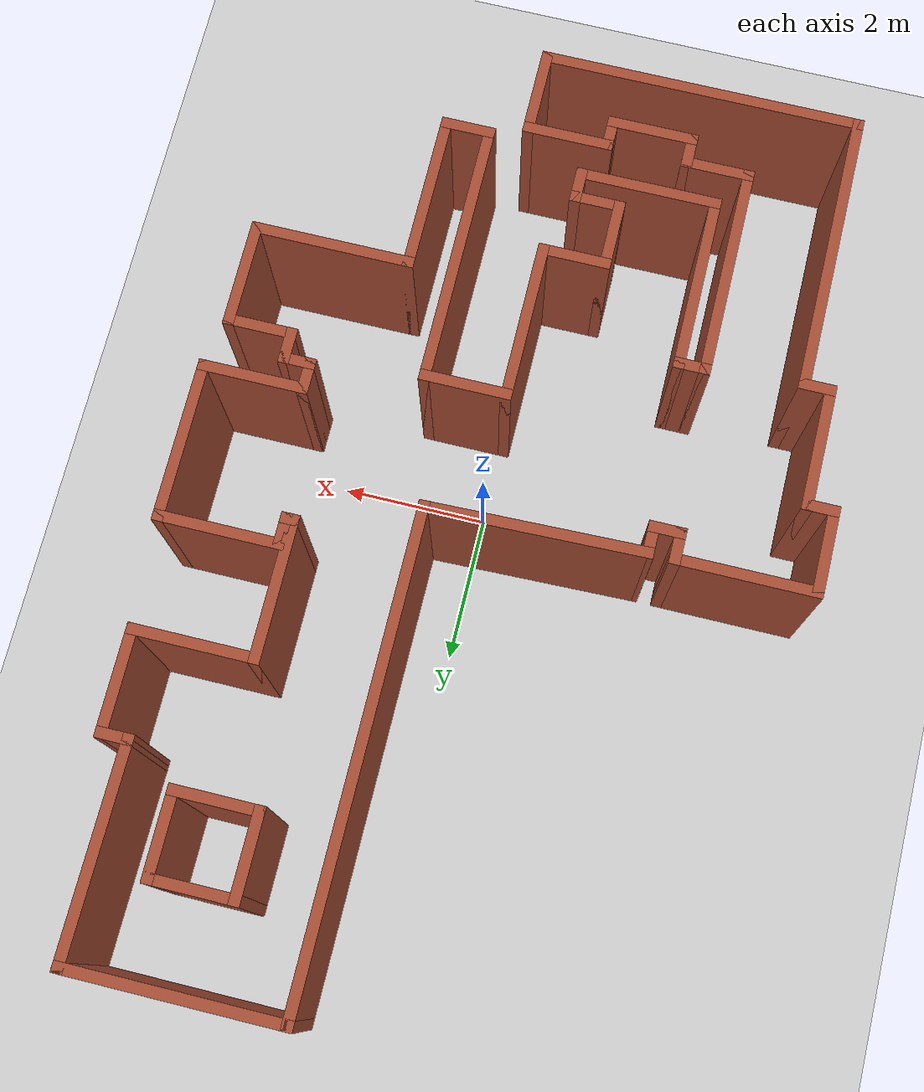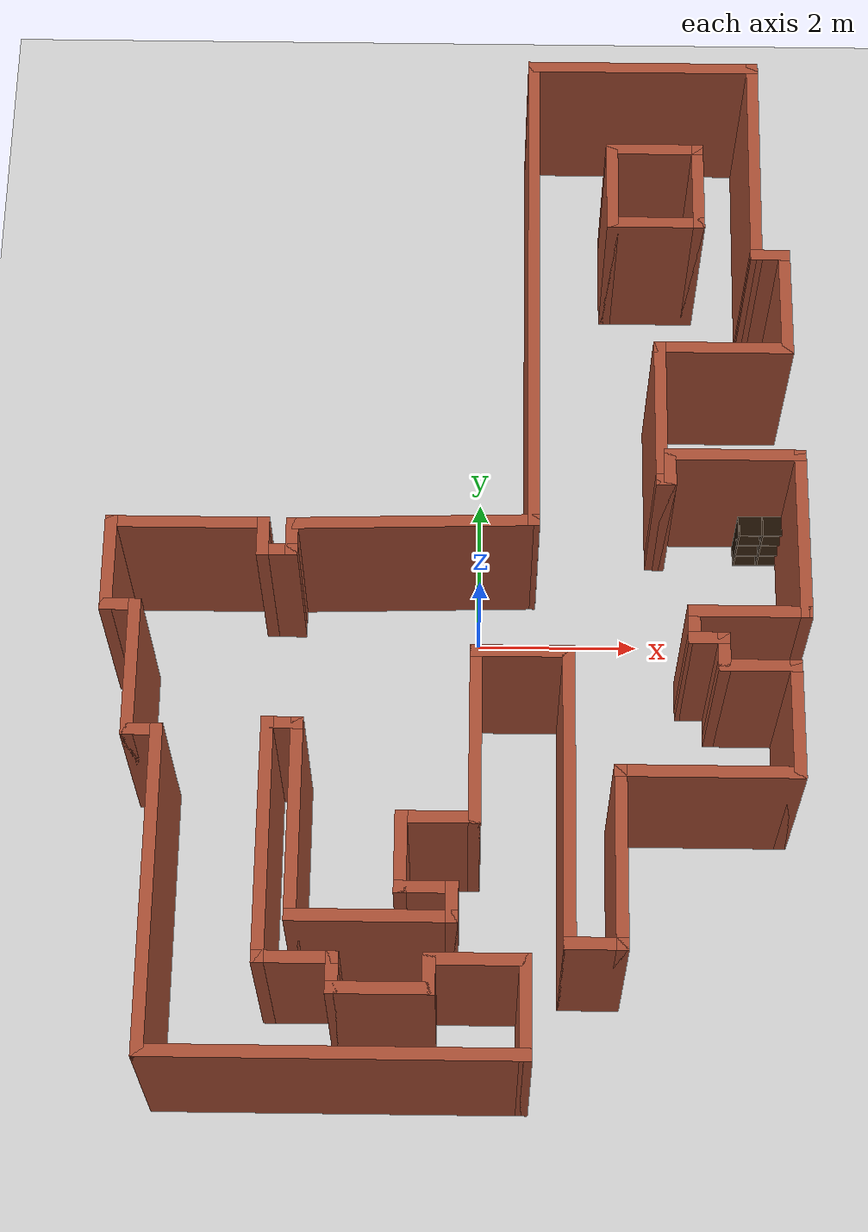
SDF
<sdf version="1.6">
 <world name="default">
  <light name="sun" type="directional">
   <pose>0 0 10 0 -0 0</pose>
   <diffuse>0.8 0.8 0.8 1</diffuse>
   <specular>0.2 0.2 0.2 1</specular>
   <attenuation>
    <range>1000</range>
    <constant>0.9</constant>
    <linear>0.01</linear>
    <quadratic>0.001</quadratic>
   </attenuation>
   <direction>-0.5 0.1 -0.9</direction>
  </light>
  <model name="ground_plane">
   <static>1</static>
   <link name="link">
    <collision name="collision">
     <geometry><plane><normal>0 0 1</normal><size>100 100</size></plane></geometry>
     <surface>
      <contact><collide_bitmask>65535</collide_bitmask></contact>
      <friction><ode><mu>100</mu><mu2>50</mu2></ode></friction>
     </surface>
    </collision>
    <visual name="visual">
     <cast_shadows>0</cast_shadows>
     <geometry><plane><normal>0 0 1</normal><size>100 100</size></plane></geometry>
     <material>
      <script><uri>file://media/materials/scripts/gazebo.material</uri><name>Gazebo/Grey</name></script>
     </material>
    </visual>
   </link>
  </model>
  <gravity>0 0 -9.8</gravity>
  <magnetic_field>6e-06 2.3e-05 -4.2e-05</magnetic_field>
  <atmosphere type="adiabatic"/>
  <physics name="default_physics" default="0" type="ode">
   <max_step_size>0.001</max_step_size>
   <real_time_factor>1</real_time_factor>
   <real_time_update_rate>1000</real_time_update_rate>
  </physics>
  <scene><ambient>0.4 0.4 0.4 1</ambient><background>0.7 0.7 0.7 1</background><shadows>1</shadows></scene>
  <audio><device>default</device></audio>
  <spherical_coordinates>
   <surface_model>EARTH_WGS84</surface_model>
   <latitude_deg>0</latitude_deg>
   <longitude_deg>0</longitude_deg>
   <elevation>0</elevation>
   <heading_deg>0</heading_deg>
  </spherical_coordinates>
  <model name="map_95">
   <pose>-0.288982 0.601975 0 0 -0 0</pose>
   <link name="Wall_0">
    <collision name="Wall_0_Collision">
     <geometry><box><size>3 0.15 2.5</size></box></geometry>
     <pose>0 0 1.25 0 -0 0</pose>
    </collision>
    <visual name="Wall_0_Visual">
     <pose>0 0 1.25 0 -0 0</pose>
     <geometry><box><size>3 0.15 2.5</size></box></geometry>
     <material>
      <script><uri>file://media/materials/scripts/gazebo.material</uri><name>Gazebo/Bricks</name></script>
      <ambient>1 1 1 1</ambient>
     </material>
     <meta><layer>0</layer></meta>
    </visual>
    <pose>2.35294 6.61348 0 0 -0 3.14159</pose>
   </link>
   <link name="Wall_1">
    <collision name="Wall_1_Collision">
     <geometry><box><size>6.75 0.15 2.5</size></box></geometry>
     <pose>0 0 1.25 0 -0 0</pose>
    </collision>
    <visual name="Wall_1_Visual">
     <pose>0 0 1.25 0 -0 0</pose>
     <geometry><box><size>6.75 0.15 2.5</size></box></geometry>
     <material>
      <script><uri>file://media/materials/scripts/gazebo.material</uri><name>Gazebo/Bricks</name></script>
      <ambient>1 1 1 1</ambient>
     </material>
     <meta><layer>0</layer></meta>
    </visual>
    <pose>0.927944 3.31348 0 0 -0 -1.5708</pose>
   </link>
   <link name="Wall_10">
    <collision name="Wall_10_Collision">
     <geometry><box><size>0.5 0.15 2.5</size></box></geometry>
     <pose>0 0 1.25 0 -0 0</pose>
    </collision>
    <visual name="Wall_10_Visual">
     <pose>0 0 1.25 0 -0 0</pose>
     <geometry><box><size>0.5 0.15 2.5</size></box></geometry>
     <material>
      <script><uri>file://media/materials/scripts/gazebo.material</uri><name>Gazebo/Bricks</name></script>
      <ambient>1 1 1 1</ambient>
     </material>
     <meta><layer>0</layer></meta>
    </visual>
    <pose>-4.025 -1.16422 0 0 -0 0</pose>
   </link>
   <link name="Wall_11">
    <collision name="Wall_11_Collision">
     <geometry><box><size>1.75 0.15 2.5</size></box></geometry>
     <pose>0 0 1.25 0 -0 0</pose>
    </collision>
    <visual name="Wall_11_Visual">
     <pose>0 0 1.25 0 -0 0</pose>
     <geometry><box><size>1.75 0.15 2.5</size></box></geometry>
     <material>
      <script><uri>file://media/materials/scripts/gazebo.material</uri><name>Gazebo/Bricks</name></script>
      <ambient>1 1 1 1</ambient>
     </material>
     <meta><layer>0</layer></meta>
    </visual>
    <pose>-3.85 -1.96422 0 0 -0 -1.5708</pose>
   </link>
   <link name="Wall_12">
    <collision name="Wall_12_Collision">
     <geometry><box><size>0.5 0.15 2.5</size></box></geometry>
     <pose>0 0 1.25 0 -0 0</pose>
    </collision>
    <visual name="Wall_12_Visual">
     <pose>0 0 1.25 0 -0 0</pose>
     <geometry><box><size>0.5 0.15 2.5</size></box></geometry>
     <material>
      <script><uri>file://media/materials/scripts/gazebo.material</uri><name>Gazebo/Bricks</name></script>
      <ambient>1 1 1 1</ambient>
     </material>
     <meta><layer>0</layer></meta>
    </visual>
    <pose>-3.675 -2.76422 0 0 -0 0</pose>
   </link>
   <link name="Wall_13">
    <collision name="Wall_13_Collision">
     <geometry><box><size>4 0.15 2.5</size></box></geometry>
     <pose>0 0 1.25 0 -0 0</pose>
    </collision>
    <visual name="Wall_13_Visual">
     <pose>0 0 1.25 0 -0 0</pose>
     <geometry><box><size>4 0.15 2.5</size></box></geometry>
     <material>
      <script><uri>file://media/materials/scripts/gazebo.material</uri><name>Gazebo/Bricks</name></script>
      <ambient>1 1 1 1</ambient>
     </material>
     <meta><layer>0</layer></meta>
    </visual>
    <pose>-3.5 -4.68922 0 0 -0 -1.5708</pose>
   </link>
   <link name="Wall_14">
    <collision name="Wall_14_Collision">
     <geometry><box><size>4.5 0.15 2.5</size></box></geometry>
     <pose>0 0 1.25 0 -0 0</pose>
    </collision>
    <visual name="Wall_14_Visual">
     <pose>0 0 1.25 0 -0 0</pose>
     <geometry><box><size>4.5 0.15 2.5</size></box></geometry>
     <material>
      <script><uri>file://media/materials/scripts/gazebo.material</uri><name>Gazebo/Bricks</name></script>
      <ambient>1 1 1 1</ambient>
     </material>
     <meta><layer>0</layer></meta>
    </visual>
    <pose>-1.325 -6.61422 0 0 -0 0</pose>
   </link>
   <link name="Wall_15">
    <collision name="Wall_15_Collision">
     <geometry><box><size>1.25 0.15 2.5</size></box></geometry>
     <pose>0 0 1.25 0 -0 0</pose>
    </collision>
    <visual name="Wall_15_Visual">
     <pose>0 0 1.25 0 -0 0</pose>
     <geometry><box><size>1.25 0.15 2.5</size></box></geometry>
     <material>
      <script><uri>file://media/materials/scripts/gazebo.material</uri><name>Gazebo/Bricks</name></script>
      <ambient>1 1 1 1</ambient>
     </material>
     <meta><layer>0</layer></meta>
    </visual>
    <pose>0.85 -6.06422 0 0 -0 1.5708</pose>
   </link>
   <link name="Wall_16">
    <collision name="Wall_16_Collision">
     <geometry><box><size>1.25 0.15 2.5</size></box></geometry>
     <pose>0 0 1.25 0 -0 0</pose>
    </collision>
    <visual name="Wall_16_Visual">
     <pose>0 0 1.25 0 -0 0</pose>
     <geometry><box><size>1.25 0.15 2.5</size></box></geometry>
     <material>
      <script><uri>file://media/materials/scripts/gazebo.material</uri><name>Gazebo/Bricks</name></script>
      <ambient>1 1 1 1</ambient>
     </material>
     <meta><layer>0</layer></meta>
    </visual>
    <pose>0.3 -5.51422 0 0 -0 3.14159</pose>
   </link>
   <link name="Wall_17">
    <collision name="Wall_17_Collision">
     <geometry><box><size>0.5 0.15 2.5</size></box></geometry>
     <pose>0 0 1.25 0 -0 0</pose>
    </collision>
    <visual name="Wall_17_Visual">
     <pose>0 0 1.25 0 -0 0</pose>
     <geometry><box><size>0.5 0.15 2.5</size></box></geometry>
     <material>
      <script><uri>file://media/materials/scripts/gazebo.material</uri><name>Gazebo/Bricks</name></script>
      <ambient>1 1 1 1</ambient>
     </material>
     <meta><layer>0</layer></meta>
    </visual>
    <pose>-0.25 -5.68922 0 0 -0 -1.5708</pose>
   </link>
   <link name="Wall_18">
    <collision name="Wall_18_Collision">
     <geometry><box><size>1.25 0.15 2.5</size></box></geometry>
     <pose>0 0 1.25 0 -0 0</pose>
    </collision>
    <visual name="Wall_18_Visual">
     <pose>0 0 1.25 0 -0 0</pose>
     <geometry><box><size>1.25 0.15 2.5</size></box></geometry>
     <material>
      <script><uri>file://media/materials/scripts/gazebo.material</uri><name>Gazebo/Bricks</name></script>
      <ambient>1 1 1 1</ambient>
     </material>
     <meta><layer>0</layer></meta>
    </visual>
    <pose>-0.8 -5.86422 0 0 -0 3.14159</pose>
   </link>
   <link name="Wall_19">
    <collision name="Wall_19_Collision">
     <geometry><box><size>0.5 0.15 2.5</size></box></geometry>
     <pose>0 0 1.25 0 -0 0</pose>
    </collision>
    <visual name="Wall_19_Visual">
     <pose>0 0 1.25 0 -0 0</pose>
     <geometry><box><size>0.5 0.15 2.5</size></box></geometry>
     <material>
      <script><uri>file://media/materials/scripts/gazebo.material</uri><name>Gazebo/Bricks</name></script>
      <ambient>1 1 1 1</ambient>
     </material>
     <meta><layer>0</layer></meta>
    </visual>
    <pose>-1.35 -5.68922 0 0 -0 1.5708</pose>
   </link>
   <link name="Wall_20">
    <collision name="Wall_20_Collision">
     <geometry><box><size>1 0.15 2.5</size></box></geometry>
     <pose>0 0 1.25 0 -0 0</pose>
    </collision>
    <visual name="Wall_20_Visual">
     <pose>0 0 1.25 0 -0 0</pose>
     <geometry><box><size>1 0.15 2.5</size></box></geometry>
     <material>
      <script><uri>file://media/materials/scripts/gazebo.material</uri><name>Gazebo/Bricks</name></script>
      <ambient>1 1 1 1</ambient>
     </material>
     <meta><layer>0</layer></meta>
    </visual>
    <pose>-1.775 -5.51422 0 0 -0 3.14159</pose>
   </link>
   <link name="Wall_21">
    <collision name="Wall_21_Collision">
     <geometry><box><size>3 0.15 2.5</size></box></geometry>
     <pose>0 0 1.25 0 -0 0</pose>
    </collision>
    <visual name="Wall_21_Visual">
     <pose>0 0 1.25 0 -0 0</pose>
     <geometry><box><size>3 0.15 2.5</size></box></geometry>
     <material>
      <script><uri>file://media/materials/scripts/gazebo.material</uri><name>Gazebo/Bricks</name></script>
      <ambient>1 1 1 1</ambient>
     </material>
     <meta><layer>0</layer></meta>
    </visual>
    <pose>-2.2 -4.08922 0 0 -0 1.5708</pose>
   </link>
   <link name="Wall_22">
    <collision name="Wall_22_Collision">
     <geometry><box><size>0.5 0.15 2.5</size></box></geometry>
     <pose>0 0 1.25 0 -0 0</pose>
    </collision>
    <visual name="Wall_22_Visual">
     <pose>0 0 1.25 0 -0 0</pose>
     <geometry><box><size>0.5 0.15 2.5</size></box></geometry>
     <material>
      <script><uri>file://media/materials/scripts/gazebo.material</uri><name>Gazebo/Bricks</name></script>
      <ambient>1 1 1 1</ambient>
     </material>
     <meta><layer>0</layer></meta>
    </visual>
    <pose>-2.025 -2.66422 0 0 -0 0</pose>
   </link>
   <link name="Wall_23">
    <collision name="Wall_23_Collision">
     <geometry><box><size>2.5 0.15 2.5</size></box></geometry>
     <pose>0 0 1.25 0 -0 0</pose>
    </collision>
    <visual name="Wall_23_Visual">
     <pose>0 0 1.25 0 -0 0</pose>
     <geometry><box><size>2.5 0.15 2.5</size></box></geometry>
     <material>
      <script><uri>file://media/materials/scripts/gazebo.material</uri><name>Gazebo/Bricks</name></script>
      <ambient>1 1 1 1</ambient>
     </material>
     <meta><layer>0</layer></meta>
    </visual>
    <pose>-1.85 -3.83922 0 0 -0 -1.5708</pose>
   </link>
   <link name="Wall_24">
    <collision name="Wall_24_Collision">
     <geometry><box><size>2 0.15 2.5</size></box></geometry>
     <pose>0 0 1.25 0 -0 0</pose>
    </collision>
    <visual name="Wall_24_Visual">
     <pose>0 0 1.25 0 -0 0</pose>
     <geometry><box><size>2 0.15 2.5</size></box></geometry>
     <material>
      <script><uri>file://media/materials/scripts/gazebo.material</uri><name>Gazebo/Bricks</name></script>
      <ambient>1 1 1 1</ambient>
     </material>
     <meta><layer>0</layer></meta>
    </visual>
    <pose>-0.925 -5.01422 0 0 -0 0</pose>
   </link>
   <link name="Wall_25">
    <collision name="Wall_25_Collision">
     <geometry><box><size>0.5 0.15 2.5</size></box></geometry>
     <pose>0 0 1.25 0 -0 0</pose>
    </collision>
    <visual name="Wall_25_Visual">
     <pose>0 0 1.25 0 -0 0</pose>
     <geometry><box><size>0.5 0.15 2.5</size></box></geometry>
     <material>
      <script><uri>file://media/materials/scripts/gazebo.material</uri><name>Gazebo/Bricks</name></script>
      <ambient>1 1 1 1</ambient>
     </material>
     <meta><layer>0</layer></meta>
    </visual>
    <pose>-0 -4.83922 0 0 -0 1.5708</pose>
   </link>
   <link name="Wall_26">
    <collision name="Wall_26_Collision">
     <geometry><box><size>0.75 0.15 2.5</size></box></geometry>
     <pose>0 0 1.25 0 -0 0</pose>
    </collision>
    <visual name="Wall_26_Visual">
     <pose>0 0 1.25 0 -0 0</pose>
     <geometry><box><size>0.75 0.15 2.5</size></box></geometry>
     <material>
      <script><uri>file://media/materials/scripts/gazebo.material</uri><name>Gazebo/Bricks</name></script>
      <ambient>1 1 1 1</ambient>
     </material>
     <meta><layer>0</layer></meta>
    </visual>
    <pose>-0.3 -4.66422 0 0 -0 3.14159</pose>
   </link>
   <link name="Wall_27">
    <collision name="Wall_27_Collision">
     <geometry><box><size>1 0.15 2.5</size></box></geometry>
     <pose>0 0 1.25 0 -0 0</pose>
    </collision>
    <visual name="Wall_27_Visual">
     <pose>0 0 1.25 0 -0 0</pose>
     <geometry><box><size>1 0.15 2.5</size></box></geometry>
     <material>
      <script><uri>file://media/materials/scripts/gazebo.material</uri><name>Gazebo/Bricks</name></script>
      <ambient>1 1 1 1</ambient>
     </material>
     <meta><layer>0</layer></meta>
    </visual>
    <pose>-0.6 -4.23922 0 0 -0 1.5708</pose>
   </link>
   <link name="Wall_28">
    <collision name="Wall_28_Collision">
     <geometry><box><size>1 0.15 2.5</size></box></geometry>
     <pose>0 0 1.25 0 -0 0</pose>
    </collision>
    <visual name="Wall_28_Visual">
     <pose>0 0 1.25 0 -0 0</pose>
     <geometry><box><size>1 0.15 2.5</size></box></geometry>
     <material>
      <script><uri>file://media/materials/scripts/gazebo.material</uri><name>Gazebo/Bricks</name></script>
      <ambient>1 1 1 1</ambient>
     </material>
     <meta><layer>0</layer></meta>
    </visual>
    <pose>-0.175 -3.81422 0 0 -0 0</pose>
   </link>
   <link name="Wall_30">
    <collision name="Wall_30_Collision">
     <geometry><box><size>3.07897 0.15 2.5</size></box></geometry>
     <pose>0 0 1.25 0 -0 0</pose>
    </collision>
    <visual name="Wall_30_Visual">
     <pose>0 0 1.25 0 -0 0</pose>
     <geometry><box><size>3.07897 0.15 2.5</size></box></geometry>
     <material>
      <script><uri>file://media/materials/scripts/gazebo.material</uri><name>Gazebo/Bricks</name></script>
      <ambient>1 1 1 1</ambient>
     </material>
     <meta><layer>0</layer></meta>
    </visual>
    <pose>-0.536028 -0.025369 0 0 -0 0.026533</pose>
   </link>
   <link name="Wall_35">
    <collision name="Wall_35_Collision">
     <geometry><box><size>0.75 0.15 2.5</size></box></geometry>
     <pose>0 0 1.25 0 -0 0</pose>
    </collision>
    <visual name="Wall_35_Visual">
     <pose>0 0 1.25 0 -0 0</pose>
     <geometry><box><size>0.75 0.15 2.5</size></box></geometry>
     <material>
      <script><uri>file://media/materials/scripts/gazebo.material</uri><name>Gazebo/Bricks</name></script>
      <ambient>1 1 1 1</ambient>
     </material>
     <meta><layer>0</layer></meta>
    </visual>
    <pose>1.65 -5.31422 0 0 -0 0</pose>
   </link>
   <link name="Wall_36">
    <collision name="Wall_36_Collision">
     <geometry><box><size>2.25 0.15 2.5</size></box></geometry>
     <pose>0 0 1.25 0 -0 0</pose>
    </collision>
    <visual name="Wall_36_Visual">
     <pose>0 0 1.25 0 -0 0</pose>
     <geometry><box><size>2.25 0.15 2.5</size></box></geometry>
     <material>
      <script><uri>file://media/materials/scripts/gazebo.material</uri><name>Gazebo/Bricks</name></script>
      <ambient>1 1 1 1</ambient>
     </material>
     <meta><layer>0</layer></meta>
    </visual>
    <pose>1.95 -4.26422 0 0 -0 1.5708</pose>
   </link>
   <link name="Wall_37">
    <collision name="Wall_37_Collision">
     <geometry><box><size>2.25 0.15 2.5</size></box></geometry>
     <pose>0 0 1.25 0 -0 0</pose>
    </collision>
    <visual name="Wall_37_Visual">
     <pose>0 0 1.25 0 -0 0</pose>
     <geometry><box><size>2.25 0.15 2.5</size></box></geometry>
     <material>
      <script><uri>file://media/materials/scripts/gazebo.material</uri><name>Gazebo/Bricks</name></script>
      <ambient>1 1 1 1</ambient>
     </material>
     <meta><layer>0</layer></meta>
    </visual>
    <pose>3 -3.21422 0 0 -0 0</pose>
   </link>
   <link name="Wall_38">
    <collision name="Wall_38_Collision">
     <geometry><box><size>1.5 0.15 2.5</size></box></geometry>
     <pose>0 0 1.25 0 -0 0</pose>
    </collision>
    <visual name="Wall_38_Visual">
     <pose>0 0 1.25 0 -0 0</pose>
     <geometry><box><size>1.5 0.15 2.5</size></box></geometry>
     <material>
      <script><uri>file://media/materials/scripts/gazebo.material</uri><name>Gazebo/Bricks</name></script>
      <ambient>1 1 1 1</ambient>
     </material>
     <meta><layer>0</layer></meta>
    </visual>
    <pose>4.05 -2.53922 0 0 -0 1.5708</pose>
   </link>
   <link name="Wall_39">
    <collision name="Wall_39_Collision">
     <geometry><box><size>1 0.15 2.5</size></box></geometry>
     <pose>0 0 1.25 0 -0 0</pose>
    </collision>
    <visual name="Wall_39_Visual">
     <pose>0 0 1.25 0 -0 0</pose>
     <geometry><box><size>1 0.15 2.5</size></box></geometry>
     <material>
      <script><uri>file://media/materials/scripts/gazebo.material</uri><name>Gazebo/Bricks</name></script>
      <ambient>1 1 1 1</ambient>
     </material>
     <meta><layer>0</layer></meta>
    </visual>
    <pose>3.625 -1.86422 0 0 -0 3.14159</pose>
   </link>
   <link name="Wall_40">
    <collision name="Wall_40_Collision">
     <geometry><box><size>0.5 0.15 2.5</size></box></geometry>
     <pose>0 0 1.25 0 -0 0</pose>
    </collision>
    <visual name="Wall_40_Visual">
     <pose>0 0 1.25 0 -0 0</pose>
     <geometry><box><size>0.5 0.15 2.5</size></box></geometry>
     <material>
      <script><uri>file://media/materials/scripts/gazebo.material</uri><name>Gazebo/Bricks</name></script>
      <ambient>1 1 1 1</ambient>
     </material>
     <meta><layer>0</layer></meta>
    </visual>
    <pose>3.2 -1.68922 0 0 -0 1.5708</pose>
   </link>
   <link name="Wall_41">
    <collision name="Wall_41_Collision">
     <geometry><box><size>0.5 0.15 2.5</size></box></geometry>
     <pose>0 0 1.25 0 -0 0</pose>
    </collision>
    <visual name="Wall_41_Visual">
     <pose>0 0 1.25 0 -0 0</pose>
     <geometry><box><size>0.5 0.15 2.5</size></box></geometry>
     <material>
      <script><uri>file://media/materials/scripts/gazebo.material</uri><name>Gazebo/Bricks</name></script>
      <ambient>1 1 1 1</ambient>
     </material>
     <meta><layer>0</layer></meta>
    </visual>
    <pose>3.025 -1.51422 0 0 -0 3.14159</pose>
   </link>
   <link name="Wall_42">
    <collision name="Wall_42_Collision">
     <geometry><box><size>0.5 0.15 2.5</size></box></geometry>
     <pose>0 0 1.25 0 -0 0</pose>
    </collision>
    <visual name="Wall_42_Visual">
     <pose>0 0 1.25 0 -0 0</pose>
     <geometry><box><size>0.5 0.15 2.5</size></box></geometry>
     <material>
      <script><uri>file://media/materials/scripts/gazebo.material</uri><name>Gazebo/Bricks</name></script>
      <ambient>1 1 1 1</ambient>
     </material>
     <meta><layer>0</layer></meta>
    </visual>
    <pose>2.85 -1.33922 0 0 -0 1.5708</pose>
   </link>
   <link name="Wall_43">
    <collision name="Wall_43_Collision">
     <geometry><box><size>1.5 0.15 2.5</size></box></geometry>
     <pose>0 0 1.25 0 -0 0</pose>
    </collision>
    <visual name="Wall_43_Visual">
     <pose>0 0 1.25 0 -0 0</pose>
     <geometry><box><size>1.5 0.15 2.5</size></box></geometry>
     <material>
      <script><uri>file://media/materials/scripts/gazebo.material</uri><name>Gazebo/Bricks</name></script>
      <ambient>1 1 1 1</ambient>
     </material>
     <meta><layer>0</layer></meta>
    </visual>
    <pose>3.525 -1.16422 0 0 -0 0</pose>
   </link>
   <link name="Wall_44">
    <collision name="Wall_44_Collision">
     <geometry><box><size>2.25 0.15 2.5</size></box></geometry>
     <pose>0 0 1.25 0 -0 0</pose>
    </collision>
    <visual name="Wall_44_Visual">
     <pose>0 0 1.25 0 -0 0</pose>
     <geometry><box><size>2.25 0.15 2.5</size></box></geometry>
     <material>
      <script><uri>file://media/materials/scripts/gazebo.material</uri><name>Gazebo/Bricks</name></script>
      <ambient>1 1 1 1</ambient>
     </material>
     <meta><layer>0</layer></meta>
    </visual>
    <pose>4.2 -0.114222 0 0 -0 1.5708</pose>
   </link>
   <link name="Wall_45">
    <collision name="Wall_45_Collision">
     <geometry><box><size>1.75 0.15 2.5</size></box></geometry>
     <pose>0 0 1.25 0 -0 0</pose>
    </collision>
    <visual name="Wall_45_Visual">
     <pose>0 0 1.25 0 -0 0</pose>
     <geometry><box><size>1.75 0.15 2.5</size></box></geometry>
     <material>
      <script><uri>file://media/materials/scripts/gazebo.material</uri><name>Gazebo/Bricks</name></script>
      <ambient>1 1 1 1</ambient>
     </material>
     <meta><layer>0</layer></meta>
    </visual>
    <pose>3.4 0.935778 0 0 -0 3.14159</pose>
   </link>
   <link name="Wall_46">
    <collision name="Wall_46_Collision">
     <geometry><box><size>0.5 0.15 2.5</size></box></geometry>
     <pose>0 0 1.25 0 -0 0</pose>
    </collision>
    <visual name="Wall_46_Visual">
     <pose>0 0 1.25 0 -0 0</pose>
     <geometry><box><size>0.5 0.15 2.5</size></box></geometry>
     <material>
      <script><uri>file://media/materials/scripts/gazebo.material</uri><name>Gazebo/Bricks</name></script>
      <ambient>1 1 1 1</ambient>
     </material>
     <meta><layer>0</layer></meta>
    </visual>
    <pose>2.6 0.760778 0 0 -0 -1.5708</pose>
   </link>
   <link name="Wall_47">
    <collision name="Wall_47_Collision">
     <geometry><box><size>0.25 0.15 2.5</size></box></geometry>
     <pose>0 0 1.25 0 -0 0</pose>
    </collision>
    <visual name="Wall_47_Visual">
     <pose>0 0 1.25 0 -0 0</pose>
     <geometry><box><size>0.25 0.15 2.5</size></box></geometry>
     <material>
      <script><uri>file://media/materials/scripts/gazebo.material</uri><name>Gazebo/Bricks</name></script>
      <ambient>1 1 1 1</ambient>
     </material>
     <meta><layer>0</layer></meta>
    </visual>
    <pose>2.55 0.585778 0 0 -0 3.14159</pose>
   </link>
   <link name="Wall_48">
    <collision name="Wall_48_Collision">
     <geometry><box><size>2 0.15 2.5</size></box></geometry>
     <pose>0 0 1.25 0 -0 0</pose>
    </collision>
    <visual name="Wall_48_Visual">
     <pose>0 0 1.25 0 -0 0</pose>
     <geometry><box><size>2 0.15 2.5</size></box></geometry>
     <material>
      <script><uri>file://media/materials/scripts/gazebo.material</uri><name>Gazebo/Bricks</name></script>
      <ambient>1 1 1 1</ambient>
     </material>
     <meta><layer>0</layer></meta>
    </visual>
    <pose>2.5 1.51078 0 0 -0 1.5708</pose>
   </link>
   <link name="Wall_49">
    <collision name="Wall_49_Collision">
     <geometry><box><size>1.75 0.15 2.5</size></box></geometry>
     <pose>0 0 1.25 0 -0 0</pose>
    </collision>
    <visual name="Wall_49_Visual">
     <pose>0 0 1.25 0 -0 0</pose>
     <geometry><box><size>1.75 0.15 2.5</size></box></geometry>
     <material>
      <script><uri>file://media/materials/scripts/gazebo.material</uri><name>Gazebo/Bricks</name></script>
      <ambient>1 1 1 1</ambient>
     </material>
     <meta><layer>0</layer></meta>
    </visual>
    <pose>3.3 2.43578 0 0 -0 0</pose>
   </link>
   <link name="Wall_5">
    <collision name="Wall_5_Collision">
     <geometry><box><size>0.5 0.15 2.5</size></box></geometry>
     <pose>0 0 1.25 0 -0 0</pose>
    </collision>
    <visual name="Wall_5_Visual">
     <pose>0 0 1.25 0 -0 0</pose>
     <geometry><box><size>0.5 0.15 2.5</size></box></geometry>
     <material>
      <script><uri>file://media/materials/scripts/gazebo.material</uri><name>Gazebo/Bricks</name></script>
      <ambient>1 1 1 1</ambient>
     </material>
     <meta><layer>0</layer></meta>
    </visual>
    <pose>-2 -0.239222 0 0 -0 -1.5708</pose>
   </link>
   <link name="Wall_50">
    <collision name="Wall_50_Collision">
     <geometry><box><size>1.5 0.15 2.5</size></box></geometry>
     <pose>0 0 1.25 0 -0 0</pose>
    </collision>
    <visual name="Wall_50_Visual">
     <pose>0 0 1.25 0 -0 0</pose>
     <geometry><box><size>1.5 0.15 2.5</size></box></geometry>
     <material>
      <script><uri>file://media/materials/scripts/gazebo.material</uri><name>Gazebo/Bricks</name></script>
      <ambient>1 1 1 1</ambient>
     </material>
     <meta><layer>0</layer></meta>
    </visual>
    <pose>4.1 3.11078 0 0 -0 1.5708</pose>
   </link>
   <link name="Wall_53">
    <collision name="Wall_53_Collision">
     <geometry><box><size>0.5 0.15 2.5</size></box></geometry>
     <pose>0 0 1.25 0 -0 0</pose>
    </collision>
    <visual name="Wall_53_Visual">
     <pose>0 0 1.25 0 -0 0</pose>
     <geometry><box><size>0.5 0.15 2.5</size></box></geometry>
     <material>
      <script><uri>file://media/materials/scripts/gazebo.material</uri><name>Gazebo/Bricks</name></script>
      <ambient>1 1 1 1</ambient>
     </material>
     <meta><layer>0</layer></meta>
    </visual>
    <pose>3.925 3.78578 0 0 -0 3.14159</pose>
   </link>
   <link name="Wall_54">
    <collision name="Wall_54_Collision">
     <geometry><box><size>2.97784 0.15 2.5</size></box></geometry>
     <pose>0 0 1.25 0 -0 0</pose>
    </collision>
    <visual name="Wall_54_Visual">
     <pose>0 0 1.25 0 -0 0</pose>
     <geometry><box><size>2.97784 0.15 2.5</size></box></geometry>
     <material>
      <script><uri>file://media/materials/scripts/gazebo.material</uri><name>Gazebo/Bricks</name></script>
      <ambient>1 1 1 1</ambient>
     </material>
     <meta><layer>0</layer></meta>
    </visual>
    <pose>3.76397 5.19963 0 0 -0 1.56091</pose>
   </link>
   <link name="Wall_56">
    <collision name="Wall_56_Collision">
     <geometry><box><size>2.25 0.15 2.5</size></box></geometry>
     <pose>0 0 1.25 0 -0 0</pose>
    </collision>
    <visual name="Wall_56_Visual">
     <pose>0 0 1.25 0 -0 0</pose>
     <geometry><box><size>2.25 0.15 2.5</size></box></geometry>
     <material>
      <script><uri>file://media/materials/scripts/gazebo.material</uri><name>Gazebo/Bricks</name></script>
      <ambient>1 1 1 1</ambient>
     </material>
     <meta><layer>0</layer></meta>
    </visual>
    <pose>0.25 -2.76422 0 0 -0 1.5708</pose>
   </link>
   <link name="Wall_59">
    <collision name="Wall_59_Collision">
     <geometry><box><size>1.25 0.15 2.5</size></box></geometry>
     <pose>0 0 1.25 0 -0 0</pose>
    </collision>
    <visual name="Wall_59_Visual">
     <pose>0 0 1.25 0 -0 0</pose>
     <geometry><box><size>1.25 0.15 2.5</size></box></geometry>
     <material>
      <script><uri>file://media/materials/scripts/gazebo.material</uri><name>Gazebo/Bricks</name></script>
      <ambient>1 1 1 1</ambient>
     </material>
     <meta><layer>0</layer></meta>
    </visual>
    <pose>0.8 -1.71422 0 0 -0 0</pose>
   </link>
   <link name="Wall_6">
    <collision name="Wall_6_Collision">
     <geometry><box><size>0.5 0.15 2.5</size></box></geometry>
     <pose>0 0 1.25 0 -0 0</pose>
    </collision>
    <visual name="Wall_6_Visual">
     <pose>0 0 1.25 0 -0 0</pose>
     <geometry><box><size>0.5 0.15 2.5</size></box></geometry>
     <material>
      <script><uri>file://media/materials/scripts/gazebo.material</uri><name>Gazebo/Bricks</name></script>
      <ambient>1 1 1 1</ambient>
     </material>
     <meta><layer>0</layer></meta>
    </visual>
    <pose>-2.175 -0.414222 0 0 -0 3.14159</pose>
   </link>
   <link name="Wall_60">
    <collision name="Wall_60_Collision">
     <geometry><box><size>3.75 0.15 2.5</size></box></geometry>
     <pose>0 0 1.25 0 -0 0</pose>
    </collision>
    <visual name="Wall_60_Visual">
     <pose>0 0 1.25 0 -0 0</pose>
     <geometry><box><size>3.75 0.15 2.5</size></box></geometry>
     <material>
      <script><uri>file://media/materials/scripts/gazebo.material</uri><name>Gazebo/Bricks</name></script>
      <ambient>1 1 1 1</ambient>
     </material>
     <meta><layer>0</layer></meta>
    </visual>
    <pose>1.35 -3.51422 0 0 -0 -1.5708</pose>
   </link>
   <link name="Wall_64">
    <collision name="Wall_64_Collision">
     <geometry><box><size>1.25 0.15 2.5</size></box></geometry>
     <pose>0 0 1.25 0 -0 0</pose>
    </collision>
    <visual name="Wall_64_Visual">
     <pose>0 0 1.25 0 -0 0</pose>
     <geometry><box><size>1.25 0.15 2.5</size></box></geometry>
     <material>
      <script><uri>file://media/materials/scripts/gazebo.material</uri><name>Gazebo/Bricks</name></script>
      <ambient>1 1 1 1</ambient>
     </material>
     <meta><layer>0</layer></meta>
    </visual>
    <pose>1.9322 4.80297 0 0 -0 -1.5708</pose>
   </link>
   <link name="Wall_65">
    <collision name="Wall_65_Collision">
     <geometry><box><size>1.25 0.15 2.5</size></box></geometry>
     <pose>0 0 1.25 0 -0 0</pose>
    </collision>
    <visual name="Wall_65_Visual">
     <pose>0 0 1.25 0 -0 0</pose>
     <geometry><box><size>1.25 0.15 2.5</size></box></geometry>
     <material>
      <script><uri>file://media/materials/scripts/gazebo.material</uri><name>Gazebo/Bricks</name></script>
      <ambient>1 1 1 1</ambient>
     </material>
     <meta><layer>0</layer></meta>
    </visual>
    <pose>2.4822 4.25297 0 0 -0 0</pose>
   </link>
   <link name="Wall_66">
    <collision name="Wall_66_Collision">
     <geometry><box><size>1.25 0.15 2.5</size></box></geometry>
     <pose>0 0 1.25 0 -0 0</pose>
    </collision>
    <visual name="Wall_66_Visual">
     <pose>0 0 1.25 0 -0 0</pose>
     <geometry><box><size>1.25 0.15 2.5</size></box></geometry>
     <material>
      <script><uri>file://media/materials/scripts/gazebo.material</uri><name>Gazebo/Bricks</name></script>
      <ambient>1 1 1 1</ambient>
     </material>
     <meta><layer>0</layer></meta>
    </visual>
    <pose>3.0322 4.80297 0 0 -0 1.5708</pose>
   </link>
   <link name="Wall_67">
    <collision name="Wall_67_Collision">
     <geometry><box><size>1.25 0.15 2.5</size></box></geometry>
     <pose>0 0 1.25 0 -0 0</pose>
    </collision>
    <visual name="Wall_67_Visual">
     <pose>0 0 1.25 0 -0 0</pose>
     <geometry><box><size>1.25 0.15 2.5</size></box></geometry>
     <material>
      <script><uri>file://media/materials/scripts/gazebo.material</uri><name>Gazebo/Bricks</name></script>
      <ambient>1 1 1 1</ambient>
     </material>
     <meta><layer>0</layer></meta>
    </visual>
    <pose>2.4822 5.35297 0 0 -0 3.14159</pose>
   </link>
   <link name="Wall_7">
    <collision name="Wall_7_Collision">
     <geometry><box><size>0.5 0.15 2.5</size></box></geometry>
     <pose>0 0 1.25 0 -0 0</pose>
    </collision>
    <visual name="Wall_7_Visual">
     <pose>0 0 1.25 0 -0 0</pose>
     <geometry><box><size>0.5 0.15 2.5</size></box></geometry>
     <material>
      <script><uri>file://media/materials/scripts/gazebo.material</uri><name>Gazebo/Bricks</name></script>
      <ambient>1 1 1 1</ambient>
     </material>
     <meta><layer>0</layer></meta>
    </visual>
    <pose>-2.35 -0.239222 0 0 -0 1.5708</pose>
   </link>
   <link name="Wall_8">
    <collision name="Wall_8_Collision">
     <geometry><box><size>2 0.15 2.5</size></box></geometry>
     <pose>0 0 1.25 0 -0 0</pose>
    </collision>
    <visual name="Wall_8_Visual">
     <pose>0 0 1.25 0 -0 0</pose>
     <geometry><box><size>2 0.15 2.5</size></box></geometry>
     <material>
      <script><uri>file://media/materials/scripts/gazebo.material</uri><name>Gazebo/Bricks</name></script>
      <ambient>1 1 1 1</ambient>
     </material>
     <meta><layer>0</layer></meta>
    </visual>
    <pose>-3.275 -0.064222 0 0 -0 3.14159</pose>
   </link>
   <link name="Wall_9">
    <collision name="Wall_9_Collision">
     <geometry><box><size>1.25 0.15 2.5</size></box></geometry>
     <pose>0 0 1.25 0 -0 0</pose>
    </collision>
    <visual name="Wall_9_Visual">
     <pose>0 0 1.25 0 -0 0</pose>
     <geometry><box><size>1.25 0.15 2.5</size></box></geometry>
     <material>
      <script><uri>file://media/materials/scripts/gazebo.material</uri><name>Gazebo/Bricks</name></script>
      <ambient>1 1 1 1</ambient>
     </material>
     <meta><layer>0</layer></meta>
    </visual>
    <pose>-4.2 -0.614222 0 0 -0 -1.5708</pose>
   </link>
   <static>1</static>
  </model>
  <model name="6_Cube_StorageE">
   <link name="Wall_0">
    <pose>0 0 0.01 0 -0 0</pose>
    <inertial>
     <mass>1.6201</mass>
     <inertia><ixx>0.0119</ixx><iyy>0.0631</iyy><izz>0.0513</izz><ixy>0</ixy><ixz>0</ixz><iyz>0</iyz></inertia>
    </inertial>
    <collision name="Wall_0_Collision"><geometry><box><size>0.616 0.296 0.02</size></box></geometry></collision>
    <visual name="Wall_0_Visual">
     <geometry><box><size>0.616 0.296 0.02</size></box></geometry>
     <material>
      <script><uri>file://media/materials/scripts/gazebo.material</uri><name>Gazebo/Grey</name></script>
      <ambient>0.105882 0.0509804 0 1</ambient>
     </material>
    </visual>
   </link>
   <joint name="0_2" type="fixed">
    <pose>-0.308 0 0 0 -0 0</pose>
    <parent>Wall_2</parent>
    <child>Wall_0</child>
    <axis>
     <xyz>1 0 0</xyz>
     <use_parent_model_frame>0</use_parent_model_frame>
     <limit><lower>-1e+16</lower><upper>1e+16</upper></limit>
    </axis>
   </joint>
   <joint name="0_12" type="fixed">
    <parent>Wall_12</parent>
    <child>Wall_0</child>
    <axis>
     <xyz>0 0 1</xyz>
     <use_parent_model_frame>0</use_parent_model_frame>
     <limit><lower>-1e+16</lower><upper>1e+16</upper></limit>
    </axis>
   </joint>
   <joint name="0_4" type="fixed">
    <pose>0.308 0 0 0 -0 0</pose>
    <parent>Wall_4</parent>
    <child>Wall_0</child>
    <axis>
     <xyz>1 0 0</xyz>
     <use_parent_model_frame>0</use_parent_model_frame>
     <limit><lower>-1e+16</lower><upper>1e+16</upper></limit>
    </axis>
   </joint>
   <link name="Wall_10">
    <pose>0 0 0.61 0 -0 0</pose>
    <inertial>
     <mass>1.6201</mass>
     <inertia><ixx>0.0119</ixx><iyy>0.0631</iyy><izz>0.0513</izz><ixy>0</ixy><ixz>0</ixz><iyz>0</iyz></inertia>
    </inertial>
    <collision name="Wall_10_Collision"><geometry><box><size>0.616 0.296 0.02</size></box></geometry></collision>
    <visual name="Wall_10_Visual">
     <geometry><box><size>0.616 0.296 0.02</size></box></geometry>
     <material>
      <script><uri>file://media/materials/scripts/gazebo.material</uri><name>Gazebo/Grey</name></script>
      <ambient>0.105882 0.0509804 0 1</ambient>
     </material>
    </visual>
   </link>
   <joint name="10_2" type="fixed">
    <pose>-0.308 0 0 0 -0 0</pose>
    <parent>Wall_2</parent>
    <child>Wall_10</child>
    <axis>
     <xyz>1 0 0</xyz>
     <use_parent_model_frame>0</use_parent_model_frame>
     <limit><lower>-1e+16</lower><upper>1e+16</upper></limit>
    </axis>
   </joint>
   <joint name="10_12" type="fixed">
    <parent>Wall_12</parent>
    <child>Wall_10</child>
    <axis>
     <xyz>0 0 1</xyz>
     <use_parent_model_frame>0</use_parent_model_frame>
     <limit><lower>-1e+16</lower><upper>1e+16</upper></limit>
    </axis>
   </joint>
   <joint name="10_4" type="fixed">
    <pose>0.308 0 0 0 -0 0</pose>
    <parent>Wall_4</parent>
    <child>Wall_10</child>
    <axis>
     <xyz>1 0 0</xyz>
     <use_parent_model_frame>0</use_parent_model_frame>
     <limit><lower>-1e+16</lower><upper>1e+16</upper></limit>
    </axis>
   </joint>
   <link name="Wall_12">
    <pose>0 0 0.4575 0 -0 0</pose>
    <inertial>
     <mass>2.4065</mass>
     <inertia><ixx>0.0177</ixx><iyy>0.1855</iyy><izz>0.168</izz><ixy>0</ixy><ixz>0</ixz><iyz>0</iyz></inertia>
    </inertial>
    <collision name="Wall_12_Collision"><geometry><box><size>0.02 0.296 0.915</size></box></geometry></collision>
    <visual name="Wall_12_Visual">
     <geometry><box><size>0.02 0.296 0.915</size></box></geometry>
     <material>
      <script><uri>file://media/materials/scripts/gazebo.material</uri><name>Gazebo/Grey</name></script>
      <ambient>0.105882 0.0509804 0 1</ambient>
     </material>
    </visual>
   </link>
   <link name="Wall_2">
    <pose>-0.298 0 0.4575 0 -0 0</pose>
    <inertial>
     <mass>2.4065</mass>
     <inertia><ixx>0.0177</ixx><iyy>0.1855</iyy><izz>0.168</izz><ixy>0</ixy><ixz>0</ixz><iyz>0</iyz></inertia>
    </inertial>
    <collision name="Wall_2_Collision"><geometry><box><size>0.02 0.296 0.915</size></box></geometry></collision>
    <visual name="Wall_2_Visual">
     <geometry><box><size>0.02 0.296 0.915</size></box></geometry>
     <material>
      <script><uri>file://media/materials/scripts/gazebo.material</uri><name>Gazebo/Grey</name></script>
      <ambient>0.105882 0.0509804 0 1</ambient>
     </material>
    </visual>
   </link>
   <link name="Wall_4">
    <pose>0.298 0 0.4575 0 -0 0</pose>
    <inertial>
     <mass>2.4065</mass>
     <inertia><ixx>0.0177</ixx><iyy>0.1855</iyy><izz>0.168</izz><ixy>0</ixy><ixz>0</ixz><iyz>0</iyz></inertia>
    </inertial>
    <collision name="Wall_4_Collision"><geometry><box><size>0.02 0.296 0.915</size></box></geometry></collision>
    <visual name="Wall_4_Visual">
     <geometry><box><size>0.02 0.296 0.915</size></box></geometry>
     <material>
      <script><uri>file://media/materials/scripts/gazebo.material</uri><name>Gazebo/Grey</name></script>
      <ambient>0.105882 0.0509804 0 1</ambient>
     </material>
    </visual>
   </link>
   <link name="Wall_6">
    <pose>0 0 0.905 0 -0 0</pose>
    <inertial>
     <mass>1.6201</mass>
     <inertia><ixx>0.0119</ixx><iyy>0.0631</iyy><izz>0.0513</izz><ixy>0</ixy><ixz>0</ixz><iyz>0</iyz></inertia>
    </inertial>
    <collision name="Wall_6_Collision"><geometry><box><size>0.616 0.296 0.02</size></box></geometry></collision>
    <visual name="Wall_6_Visual">
     <geometry><box><size>0.616 0.296 0.02</size></box></geometry>
     <material>
      <script><uri>file://media/materials/scripts/gazebo.material</uri><name>Gazebo/Grey</name></script>
      <ambient>0.105882 0.0509804 0 1</ambient>
     </material>
    </visual>
   </link>
   <joint name="6_2" type="fixed">
    <pose>-0.308 0 0 0 -0 0</pose>
    <parent>Wall_2</parent>
    <child>Wall_6</child>
    <axis>
     <xyz>2 0 0</xyz>
     <use_parent_model_frame>0</use_parent_model_frame>
     <limit><lower>-1e+16</lower><upper>1e+16</upper></limit>
    </axis>
   </joint>
   <joint name="6_12" type="fixed">
    <parent>Wall_12</parent>
    <child>Wall_6</child>
    <axis>
     <xyz>0 0 1</xyz>
     <use_parent_model_frame>0</use_parent_model_frame>
     <limit><lower>-1e+16</lower><upper>1e+16</upper></limit>
    </axis>
   </joint>
   <joint name="6_4" type="fixed">
    <pose>0.308 0 0 0 -0 0</pose>
    <parent>Wall_4</parent>
    <child>Wall_6</child>
    <axis>
     <xyz>1 0 0</xyz>
     <use_parent_model_frame>0</use_parent_model_frame>
     <limit><lower>-1e+16</lower><upper>1e+16</upper></limit>
    </axis>
   </joint>
   <link name="Wall_8">
    <pose>0 0 0.305 0 -0 0</pose>
    <inertial>
     <mass>1.6201</mass>
     <inertia><ixx>0.0119</ixx><iyy>0.0631</iyy><izz>0.0513</izz><ixy>0</ixy><ixz>0</ixz><iyz>0</iyz></inertia>
    </inertial>
    <collision name="Wall_8_Collision"><geometry><box><size>0.616 0.296 0.02</size></box></geometry></collision>
    <visual name="Wall_8_Visual">
     <geometry><box><size>0.616 0.296 0.02</size></box></geometry>
     <material>
      <script><uri>file://media/materials/scripts/gazebo.material</uri><name>Gazebo/Grey</name></script>
      <ambient>0.105882 0.0509804 0 1</ambient>
     </material>
    </visual>
   </link>
   <joint name="8_2" type="fixed">
    <pose>-0.308 0 0 0 -0 0</pose>
    <parent>Wall_2</parent>
    <child>Wall_8</child>
    <axis>
     <xyz>1 0 0</xyz>
     <use_parent_model_frame>0</use_parent_model_frame>
     <limit><lower>-1e+16</lower><upper>1e+16</upper></limit>
    </axis>
   </joint>
   <joint name="8_12" type="fixed">
    <parent>Wall_12</parent>
    <child>Wall_8</child>
    <axis>
     <xyz>0 0 1</xyz>
     <use_parent_model_frame>0</use_parent_model_frame>
     <limit><lower>-1e+16</lower><upper>1e+16</upper></limit>
    </axis>
   </joint>
   <joint name="8_4" type="fixed">
    <pose>0.308 0 0 0 -0 0</pose>
    <parent>Wall_4</parent>
    <child>Wall_8</child>
    <axis>
     <xyz>1 0 0</xyz>
     <use_parent_model_frame>0</use_parent_model_frame>
     <limit><lower>-1e+16</lower><upper>1e+16</upper></limit>
    </axis>
   </joint>
   <static>1</static>
   <pose>3.58875 1.34656 0 0 -0 0</pose>
  </model>
 </world>
</sdf>
